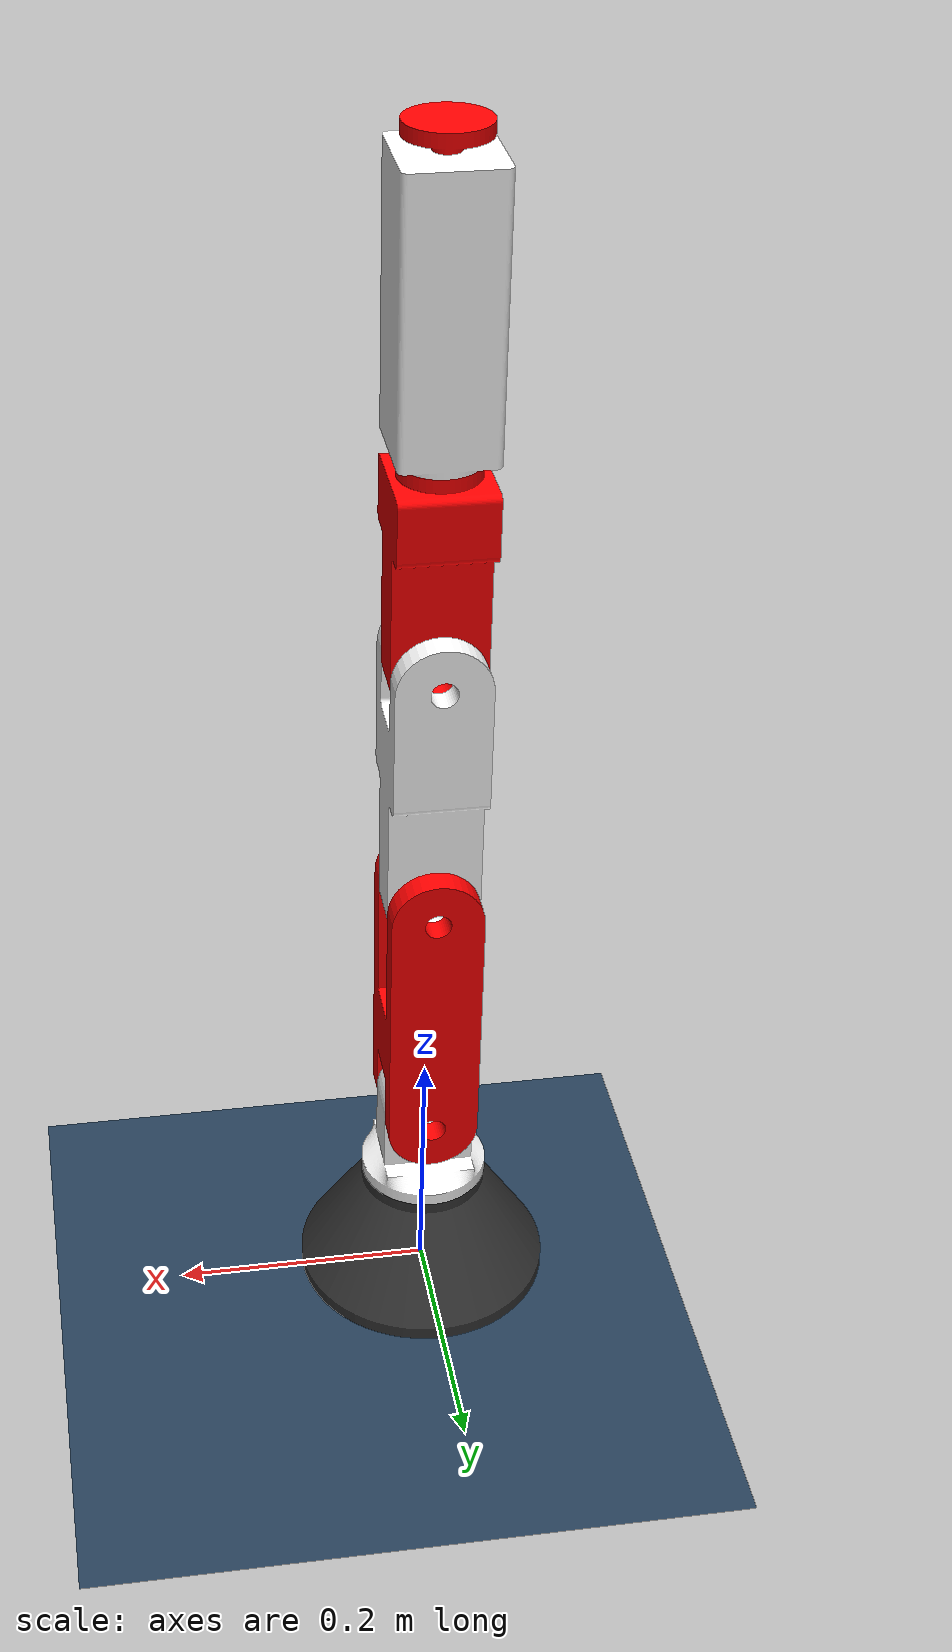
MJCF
<mujoco model="Robotic_Arm">

    <option integrator="implicit"/>

	<asset>
		<texture name="grid" type="2d" builtin="checker" width="512" height="512" rgb1=".1 .2 .3" rgb2=".2 .3 .4"/>
		<material name="grid" texture="grid" texrepeat="1 1" texuniform="true" reflectance=".2"/>

        <mesh file="3D_Model/STL/link_0.STL"/>
        <mesh file="3D_Model/STL/link_1.STL"/>
        <mesh file="3D_Model/STL/link_2.STL"/>
        <mesh file="3D_Model/STL/link_3.STL"/>
        <mesh file="3D_Model/STL/link_4.STL"/>
        <mesh file="3D_Model/STL/link_5.STL"/>
        <mesh file="3D_Model/STL/link_6.STL"/>
        <mesh file="3D_Model/STL/bush.STL"/>
        <mesh file="3D_Model/STL/gripper_arm.STL"/>

	</asset>

	<worldbody>
		<geom type="plane" size="0 0 0.1" material="grid"/>
		<light directional="false" pos="0 0 20" dir="0 0 -1" diffuse="1 1 1" active="true"/>

        <body name="base" pos="0.0 0.0 0.0">
            <geom type="mesh" mesh="link_0" pos="0.0 0.0 0.0" rgba="0.2 0.2 0.2 1.0"/>

            <body name="body_1" pos="0.0 0.0 0.170">
                <geom type="mesh" mesh="link_1" pos="0.0 0.0 0.0" rgba="1.0 1.0 1.0 1.0" density="1020"/>
                <inertial pos="0 0  -0.0314492" xyaxes="0 0 1 -1 0 0" mass="0.35690217" diaginertia="2814.25487e-7 4440.59357e-7 5006.70786e-7"/>
                <joint name="joint_1" type="hinge" axis="0 0 1" pos="0 0 0" limited="false" armature="0.1" damping="10.0"/>

                <body name="body_2" pos="0.0 0.0 0.100">
                    <geom type="mesh" mesh="link_2" pos="0.0 0.0 0.00" rgba="1.0 0.0 0.0 1.0" density="1020"/>
                    <inertial pos="0 0  -0.0012139" xyaxes="0 0 -1 0 -1 0" mass="0.45195861" diaginertia="6288.91790e-7 27693.25515e-7 29455.03631e-7"/>
                    <joint name="joint_2" type="hinge" axis="0 1 0" pos="0.0 0.0 -0.1" range="0.0 180.0" ref="+90.0" armature="0.1" damping="10.0"/>

                    <body name="body_3" pos="0.0 0.0 0.200">
                        <geom type="mesh" mesh="link_3" pos="0.0 0.0 0.0" rgba="1.0 1.0 1.0 1.0" density="1020"/>
                        <inertial pos="0 0  +0.0119218" xyaxes="0 0 1 0 -1 0" mass="0.37484212" diaginertia="4327.61778e-7 23635.71296e-7 23921.73007e-7"/>
                        <joint name="joint_3" type="hinge" axis="0 1 0" pos="0.0 0.0 -0.1" range="-120.0 +120" armature="0.1" damping="10.0"/>

                        <body name="body_4" pos="0.0 0.0 0.100">
                            <geom type="mesh" mesh="link_4" pos="0.0 0.0 0.0" rgba="1.0 0.0 0.0 1.0" density="1020"/>
                            <inertial pos="0 0  +0.0735514" xyaxes="0 0 1 -1 0 0" mass="0.25855864" diaginertia="2599.35655e-7 10088.49390e-7 10393.03987e-7"/>
                            <joint name="joint_4" type="hinge" axis="0 1 0" pos="0.0 0.0 0.0" range="-180.0 0.0" ref="-90.0" armature="0.1" damping="10.0"/>

                            <body name="body_5" pos="0 0 0.160">
                                <geom type="mesh" mesh="link_5" pos="0.0 0.0 0.0" rgba="1.0 1.0 1.0 1.0" density="1020"/>
                                <inertial pos="0 0  +0.1096877" xyaxes="0 0 1 0 -1 0" mass="0.16089002" diaginertia="2264.69799e-7 7875.32745e-7 8087.03173e-7"/>
                                <joint name="joint_5" type="hinge" axis="0 0 1" pos="0.0 0.0 0.0" limited="false" armature="0.1" damping="10.0"/>

                                <body name="end_effector" pos="0 0 0.230">
                                    <geom type="mesh" mesh="link_6" pos="0.0 0.0 0.0" rgba="1.0 0.0 0.0 1.0" density="1020"/>
                                    <inertial pos="0 0 -0.0560843" xyaxes="0 0 1 0 -1 0" mass="0.01702190" diaginertia="47.93806e-7 562.83931e-7 562.83931e-7"/>
                                    <joint name="joint_6" type="slide" axis="0 0 1" pos="0.0 0.0 0.0" range="0.00 0.14" armature="0.1" damping="10.0"/>

                                    <camera name="Moving Cam" mode="fixed" pos="0.0 0.0 0.01" zaxis="0 0 -1"/>

                                </body>

                            </body>

                        </body>

                    </body>
                </body>

            </body>
        </body>

	</worldbody>

    <actuator>
        <motor name="motor_1" joint="joint_1" gear="100.0"/>
        <motor name="motor_2" joint="joint_2" gear="100.0"/>
        <motor name="motor_3" joint="joint_3" gear="100.0"/>
        <motor name="motor_4" joint="joint_4" gear="100.0"/>
        <motor name="motor_5" joint="joint_5" gear="100.0"/>
        <motor name="motor_6" joint="joint_6" gear="100.0"/>
    </actuator>

    <sensor>
        <framepos    objtype="xbody" objname="end_effector"/>
        <framequat   objtype="xbody" objname="end_effector"/>
        <framexaxis  objtype="xbody" objname="end_effector"/>
        <frameyaxis  objtype="xbody" objname="end_effector"/>
        <framezaxis  objtype="xbody" objname="end_effector"/>
        <framelinvel objtype="xbody" objname="end_effector"/>
        <frameangvel objtype="xbody" objname="end_effector"/>
        <framelinacc objtype="xbody" objname="end_effector"/>
        <frameangacc objtype="xbody" objname="end_effector"/>

        <e_kinetic/>
        <e_potential/>
    </sensor>

    <contact>
        <exclude body1="base" body2="body_1"/>
        <exclude body1="body_1" body2="body_2"/>
        <exclude body1="body_2" body2="body_3"/>
        <exclude body1="body_3" body2="body_4"/>
        <exclude body1="body_4" body2="body_5"/>
        <exclude body1="body_5" body2="end_effector"/>
    </contact>

</mujoco>
